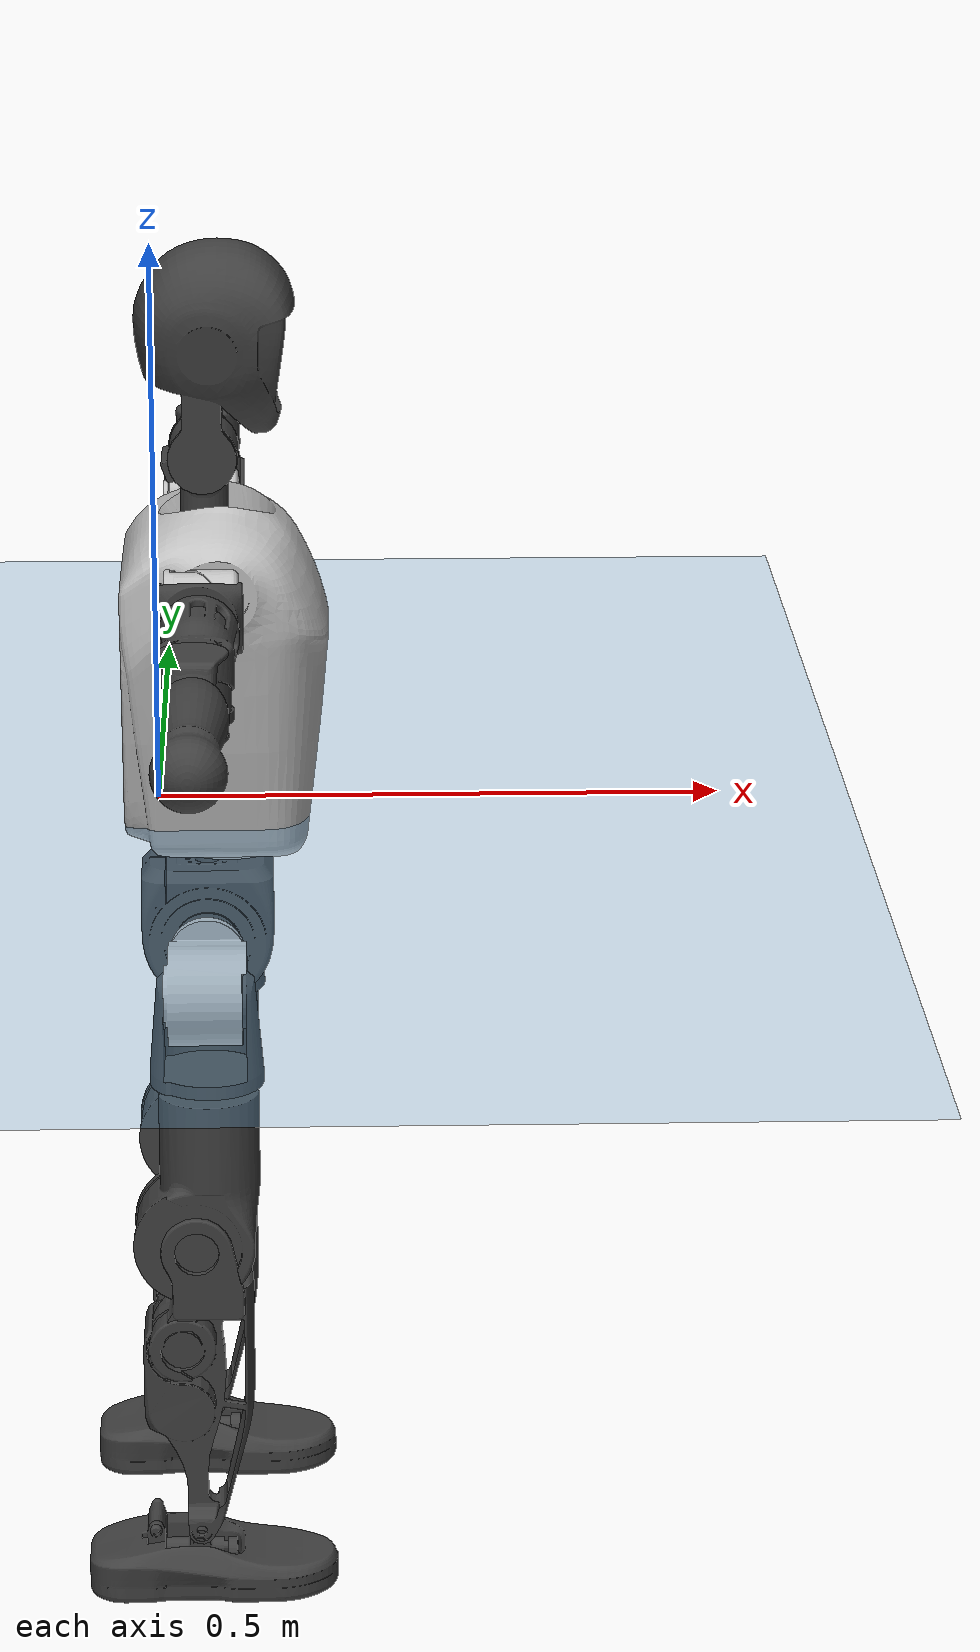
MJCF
<mujoco model="T1">
  <compiler angle="radian" assetdir="assets" balanceinertia="true" inertiafromgeom="false"/>

  <option timestep="0.005" density="1.2" viscosity="2e-05"/>

  <size nkey="1"/>

  <visual>
    <quality shadowsize="8192"/>
    <map shadowclip="0.5"/>
  </visual>

  <default>
    <default class="/">
      <joint armature="0.01" damping="0.01" frictionloss="0.1"/>
      <geom contype="0" conaffinity="0" group="1" solref="-1000 -80"/>
      <site size="0.01 0.005 0.005" group="5"/>
      <general forcelimited="true" biastype="affine" gainprm="25" biasprm="0 -25 -0.6"/>
      <default class="t1">
        <geom rgba="0.25 0.25 0.25 1"/>
        <default class="visual">
          <geom type="mesh" group="2"/>
        </default>
        <default class="collision">
          <geom group="3"/>
        </default>
        <default class="foot">
          <geom size="0.1115 0.05 0.015" type="box" condim="6" group="4" priority="1" solimp="0.015 1 0.015"/>
        </default>
        <default class="reward_collision_sphere">
          <geom group="5" rgba="1 0 0 1"/>
        </default>
      </default>
    </default>
  </default>

  <asset>
    <texture type="skybox" colorspace="auto" name="//unnamed_texture_0" builtin="gradient" rgb1="0.95 0.95 0.95" rgb2="0.95 0.95 0.95" width="100" height="600"/>
    <texture type="2d" colorspace="auto" name="texplane" builtin="checker" rgb1="0.345 0.575 0.748" rgb2="0.345 0.575 0.748" markrgb="1 1 1" width="512" height="512"/>
    <material name="MatPlane" class="/" texture="texplane" texuniform="true" texrepeat="2 2" specular="0.9"/>
    <mesh name="Trunk" class="/" file="Trunk.stl"/>
    <mesh name="H1" class="/" file="H1.stl"/>
    <mesh name="H2" class="/" file="H2.stl"/>
    <mesh name="AL1" class="/" file="AL1.stl"/>
    <mesh name="AL2" class="/" file="AL2.stl"/>
    <mesh name="AL3" class="/" file="AL3.stl"/>
    <mesh name="left_hand_link" class="/" file="left_hand_link.stl"/>
    <mesh name="AR1" class="/" file="AR1.stl"/>
    <mesh name="AR2" class="/" file="AR2.stl"/>
    <mesh name="AR3" class="/" file="AR3.stl"/>
    <mesh name="right_hand_link" class="/" file="right_hand_link.stl"/>
    <mesh name="Waist" class="/" file="Waist.stl"/>
    <mesh name="Hip_Pitch_Left" class="/" file="Hip_Pitch_Left.stl"/>
    <mesh name="Hip_Roll_Left" class="/" file="Hip_Roll_Left.stl"/>
    <mesh name="Hip_Yaw_Left" class="/" file="Hip_Yaw_Left.stl"/>
    <mesh name="Shank_Left" class="/" file="Shank_Left.stl"/>
    <mesh name="Ankle_Cross_Left" class="/" file="Ankle_Cross_Left.stl"/>
    <mesh name="left_foot_link" class="/" file="left_foot_link.stl"/>
    <mesh name="Hip_Pitch_Right" class="/" file="Hip_Pitch_Right.stl"/>
    <mesh name="Hip_Roll_Right" class="/" file="Hip_Roll_Right.stl"/>
    <mesh name="Hip_Yaw_Right" class="/" file="Hip_Yaw_Right.stl"/>
    <mesh name="Shank_Right" class="/" file="Shank_Right.stl"/>
    <mesh name="Ankle_Cross_Right" class="/" file="Ankle_Cross_Right.stl"/>
    <mesh name="right_foot_link" class="/" file="right_foot_link.stl"/>
  </asset>

  <worldbody>
    <geom name="floor" class="/" size="100 100 0.125" type="plane" group="0" material="MatPlane"/>
    <light name="toplight_shadow" class="/" pos="0 0 5" dir="0.0990148 0.0990148 -0.990148" type="directional" ambient="0.04 0.04 0.04" diffuse="0.55 0.55 0.55" specular="0.12 0.12 0.12"/>
    <light name="toplight_fill" class="/" pos="0 0 5" dir="0.0990148 0.0990148 -0.990148" type="directional" castshadow="false" ambient="0.04 0.04 0.04" diffuse="0.3 0.3 0.3" specular="0.08 0.08 0.08"/>
    <body name="trunk" childclass="t1" pos="9.2163e-05 -0.00116737 -0.000829376" quat="1 1.7112e-05 6.12854e-05 7.40735e-05">
      <inertial pos="0.043079 0.00163649 0.112182" quat="0.999957 -0.00238653 0.00117905 0.00885567" mass="12.4436" diaginertia="0.0209697 0.271675 0.0672844"/>
      <joint name="//unnamed_joint_0" type="free" armature="0" damping="0" frictionloss="0"/>
      <geom name="//unnamed_geom_1" class="visual" rgba="0.76 0.76 0.76 1" mesh="Trunk"/>
      <geom name="//unnamed_geom_2" class="collision" size="0.0772151 0.102953 0.15443" pos="0.0449458 0 0.12533" type="box"/>
      <geom name="//unnamed_geom_3" class="reward_collision_sphere" size="0.118396" pos="0.0449458 0 0.104442"/>
      <geom name="//unnamed_geom_4" class="reward_collision_sphere" size="0.015443" pos="0.0449458 0.110082 0"/>
      <geom name="//unnamed_geom_5" class="reward_collision_sphere" size="0.015443" pos="0.0449458 -0.110082 0"/>
      <geom name="//unnamed_geom_6" class="reward_collision_sphere" size="0.015443" pos="0.0449458 0.138574 0.187995"/>
      <geom name="//unnamed_geom_7" class="reward_collision_sphere" size="0.015443" pos="0.0449458 -0.138574 0.187995"/>
      <site name="imu" pos="-0.0123214 -0.0100244 0.000256606" size="0.0102953"/>
      <camera name="track" pos="0 -2.59018 0" quat="0.707107 0.707107 0 0" mode="trackcom"/>
      <camera name="ego_camera" pos="0.0913898 0 0.438655" quat="-0.5 -0.5 0.5 0.5"/>
      <body name="H1" pos="0.0446819 -0.00278943 0.256073" quat="1 9.63524e-05 -3.39008e-05 -3.98875e-05">
        <inertial pos="-0.0012582 -0.000226413 0.0607131" quat="0.76103 -0.00221552 0.00691285 0.648676" mass="0.470474" diaginertia="5.5952e-05 0.000794237 0.00018566"/>
        <joint name="AAHead_yaw" pos="0 0 0" axis="-0.000795843 0.00685965 0.999976" range="-1.57594 1.52284" armature="0.0107385" damping="0.0254768" frictionloss="0.0957028"/>
        <geom name="//unnamed_geom_8" class="visual" mesh="H1"/>
        <body name="H2" pos="-0.000962325 -0.00128069 0.0615691" quat="1 0.000153242 -2.95859e-05 5.053e-05">
          <inertial pos="0.00417962 -0.000836325 0.102241" quat="0.988579 0.097513 -0.0815306 -0.0809657" mass="0.683452" diaginertia="0.000480518 0.00696451 0.00220996"/>
          <joint name="Head_pitch" pos="0 0 0" axis="-0.0020774 -0.999998 0.000605568" stiffness="0.00116312" range="-1.21284 0.351857" armature="0.0100682" damping="0.00983405" frictionloss="0.0889068"/>
          <geom name="//unnamed_geom_9" class="visual" mesh="H2"/>
          <geom name="//unnamed_geom_10" class="collision" size="0.0823627" pos="0.00749097 0 0.114886"/>
          <geom name="//unnamed_geom_11" class="reward_collision_sphere" size="0.0926581" pos="0.0149819 0 0.104442"/>
        </body>
      </body>
      <body name="AL1" pos="0.041312 0.137368 0.226841" quat="0.999999 -0.00101296 0.00111064 0.000411574">
        <inertial pos="-0.000558549 0.0561044 -0.00190841" quat="0.50542 0.48644 -0.510227 0.49759" mass="0.581452" diaginertia="0.000327485 0.00486297 0.00036089"/>
        <joint name="Left_Shoulder_Pitch" pos="0 0 0" axis="-0.000484906 1 -0.000684533" stiffness="0.00261896" range="-3.31373 1.27468" armature="0.0101271" damping="0.00214419" frictionloss="0.103062"/>
        <geom name="//unnamed_geom_12" class="visual" rgba="0.76 0.76 0.76 1" mesh="AL1"/>
        <body name="AL2" pos="0.00027507 0.0640027 -0.00272483" quat="0.999999 -0.000820376 0.000515546 0.000845757">
          <inertial pos="0.00526696 0.050956 0.00225655" quat="0.491927 0.508264 -0.483531 0.515629" mass="0.17688" diaginertia="9.38141e-05 0.00124726 0.000223803"/>
          <joint name="Left_Shoulder_Roll" pos="0 0 0" axis="-0.999998 -0.0016758 -0.00130676" range="-1.57158 1.74193" armature="0.0102589" damping="0.00551224" frictionloss="0.10553"/>
          <geom name="//unnamed_geom_13" class="visual" mesh="AL2"/>
          <body name="AL3" pos="0.00090979 0.080083 0.00294799" quat="1 -3.27972e-06 5.5912e-06 -9.46215e-06">
            <inertial pos="-0.00232155 0.109859 -0.00275612" quat="0.714442 0.699653 0.00753042 -0.00062931" mass="1.1922" diaginertia="0.00313055 0.0478156 0.000801407"/>
            <joint name="Left_Elbow_Pitch" pos="0 0 0" axis="-0.000958721 -0.999956 -0.00933909" stiffness="0.00268838" range="-2.29033 2.31515" armature="0.0108411" damping="0.0238226" frictionloss="0.101538"/>
            <geom name="//unnamed_geom_14" class="visual" mesh="AL3"/>
            <geom name="//unnamed_geom_15" class="collision" size="0.030886 0.0772151" pos="0 0.0647544 0" quat="0.707105 0.707108 0 0" type="cylinder"/>
            <geom name="//unnamed_geom_16" class="reward_collision_sphere" size="0.0370632"/>
            <body name="left_hand_link" pos="0.00211361 0.193134 -0.00169674" quat="1 0.000107702 2.06828e-05 0.000439766">
              <inertial pos="-0.000781021 0.143095 -0.000339739" quat="0.708914 0.705293 0.000184741 -0.00126317" mass="0.352585" diaginertia="0.00185515 0.0295744 0.000270148"/>
              <joint name="Left_Elbow_Yaw" pos="0 0 0" axis="-0.000187926 -0.000175956 1" stiffness="0.00728297" range="-2.49015 0.0106076" armature="0.0103892" damping="0.00399954" frictionloss="0.11733"/>
              <geom name="//unnamed_geom_17" class="visual" mesh="left_hand_link"/>
              <geom name="//unnamed_geom_18" class="collision" size="0.030886 0.0900842" pos="0 0.168361 0" quat="0.707105 0.707108 0 0" type="cylinder"/>
              <geom name="//unnamed_geom_19" class="reward_collision_sphere" size="0.0514767"/>
              <geom name="//unnamed_geom_20" class="reward_collision_sphere" size="0.0360337" pos="0 0.14246 0"/>
              <geom name="//unnamed_geom_21" class="reward_collision_sphere" size="0.0360337" pos="0 0.278444 0"/>
            </body>
          </body>
        </body>
      </body>
      <body name="AR1" pos="0.0437803 -0.136946 0.22746" quat="0.999999 0.0010318 0.000939777 -0.000379989">
        <inertial pos="-0.00339117 -0.0582866 -0.00238253" quat="0.507744 0.498776 -0.494355 0.49903" mass="0.60856" diaginertia="0.000327579 0.00491889 0.000383309"/>
        <joint name="Right_Shoulder_Pitch" pos="0 0 0" axis="-0.00511077 -0.999986 0.000997437" stiffness="0.00121283" range="-1.22624 3.29912" armature="0.00985495" damping="0" frictionloss="0.0924303"/>
        <geom name="//unnamed_geom_22" class="visual" rgba="0.76 0.76 0.76 1" mesh="AR1"/>
        <body name="AR2" pos="-0.00121813 -0.0607086 0.00181892" quat="1 0.000264095 7.07186e-06 -5.97494e-05">
          <inertial pos="0.000309742 -0.0507295 -0.000455846" quat="0.504506 0.496688 -0.51089 0.487613" mass="0.174754" diaginertia="9.88484e-05 0.00125828 0.000229775"/>
          <joint name="Right_Shoulder_Roll" pos="0 0 0" axis="-0.999998 -0.000345318 0.00212717" stiffness="0.0013382" range="-1.74737 1.56328" armature="0.0101391" damping="0.000184642" frictionloss="0.103351"/>
          <geom name="//unnamed_geom_23" class="visual" mesh="AR2"/>
          <body name="AR3" pos="0.000785304 -0.0764511 -0.00172693" quat="0.999999 -0.0011366 -0.000730267 0.000425373">
            <inertial pos="0.000297543 -0.10954 0.000253332" quat="0.707853 0.70623 0.0130129 -0.0038642" mass="1.14521" diaginertia="0.00313024 0.0469824 0.000786766"/>
            <joint name="Right_Elbow_Pitch" pos="0 0 0" axis="0.00144376 0.999986 0.00505805" stiffness="0.00120667" range="-2.24991 2.27917" armature="0.010411" damping="0.00957634" frictionloss="0.0996552"/>
            <geom name="//unnamed_geom_24" class="visual" mesh="AR3"/>
            <geom name="//unnamed_geom_25" class="collision" size="0.030886 0.0772151" pos="0 -0.0647544 0" quat="0.707105 0.707108 0 0" type="cylinder"/>
            <geom name="//unnamed_geom_26" class="reward_collision_sphere" size="0.0370632"/>
            <body name="right_hand_link" pos="-0.00176608 -0.18803 0.00154188" quat="0.999999 -0.000796975 0.000974687 -0.000635773">
              <inertial pos="-3.43374e-05 -0.139094 0.00195532" quat="0.70764 0.706572 0.000918235 0.000716466" mass="0.366303" diaginertia="0.00197025 0.0303674 0.00026834"/>
              <joint name="Right_Elbow_Yaw" pos="0 0 0" axis="-0.00297687 -0.000746421 0.999995" range="0.0505822 2.43124" armature="0.0108158" damping="0.00612193" frictionloss="0.114308"/>
              <geom name="//unnamed_geom_27" class="visual" mesh="right_hand_link"/>
              <geom name="//unnamed_geom_28" class="collision" size="0.030886 0.0900842" pos="0 -0.168361 0" quat="0.707105 0.707108 0 0" type="cylinder"/>
              <geom name="//unnamed_geom_29" class="reward_collision_sphere" size="0.0514767"/>
              <geom name="//unnamed_geom_30" class="reward_collision_sphere" size="0.0360337" pos="0 -0.14246 0"/>
              <geom name="//unnamed_geom_31" class="reward_collision_sphere" size="0.0360337" pos="0 -0.278444 0"/>
            </body>
          </body>
        </body>
      </body>
      <body name="Waist" pos="0.0428716 -0.000539629 -0.121451" quat="1 -0.000547932 -0.000343413 0.000332502">
        <inertial pos="0.000295593 -0.000792041 0.00696093" quat="0.984191 0.00380408 -0.176993 0.00527164" mass="2.63279" diaginertia="0.00120002 0.0188134 0.00578503"/>
        <joint name="Waist" pos="0 0 0" axis="-0.00316352 -0.00459152 0.999984" range="-1.61818 1.58044" armature="0.011611" damping="0.0215586" frictionloss="0.101802"/>
        <geom name="//unnamed_geom_32" class="visual" mesh="Waist"/>
        <body name="Hip_Pitch_Left" pos="-0.000321573 0.138643 -0.00126842" quat="1 -1.6137e-05 1.63863e-06 -4.27646e-06">
          <inertial pos="0.000927134 -0.00686461 -0.016285" quat="0.976648 0.214468 0.00815052 0.00977077" mass="1.15221" diaginertia="0.000427396 0.00553754 0.00157469"/>
          <joint name="Left_Hip_Pitch" pos="0 0 0" axis="-3.68839e-05 0.999995 -0.00322557" stiffness="0.00641714" range="-1.79513 1.61672" armature="0.01136" damping="0.0218378" frictionloss="0.108482"/>
          <geom name="//unnamed_geom_33" class="visual" rgba="0.76 0.76 0.76 1" mesh="Hip_Pitch_Left"/>
          <body name="Hip_Roll_Left" pos="0.00192508 -0.00284467 -0.0230181" quat="1 -0.00032491 0.00029485 -1.6691e-05">
            <inertial pos="-0.00133472 0.000404463 -0.0540276" quat="0.704801 -0.000582231 -0.0136247 0.709274" mass="0.414783" diaginertia="0.000402192 0.00576039 0.000648485"/>
            <joint name="Left_Hip_Roll" pos="0 0 0" axis="-0.999931 0.0115415 -0.00199875" stiffness="0.0100382" range="-1.57009 0.192791" armature="0.011444" damping="0.00733905" frictionloss="0.0902874"/>
            <geom name="//unnamed_geom_34" class="visual" mesh="Hip_Roll_Left"/>
            <geom name="//unnamed_geom_35" class="reward_collision_sphere" size="0.0566244"/>
            <body name="Hip_Yaw_Left" pos="-0.00288609 -0.000471636 -0.0843008" quat="1 -0.0001857 -0.000379928 0.000114881">
              <inertial pos="-0.00790962 0.000389593 -0.0926896" quat="0.695831 -0.0371618 -0.0356548 0.716356" mass="2.34695" diaginertia="0.00612424 0.089458 0.00324799"/>
              <joint name="Left_Hip_Yaw" pos="0 0 0" axis="-0.00643127 0.00050115 -0.999979" stiffness="0.000104213" range="-1.0587 1.05488" armature="0.0105082" damping="0" frictionloss="0.100994"/>
              <geom name="//unnamed_geom_36" class="visual" mesh="Hip_Yaw_Left"/>
              <geom name="//unnamed_geom_37" class="collision" size="0.0514767 0.0823627" type="cylinder"/>
              <body name="Shank_Left" pos="-0.00863995 -0.000656226 -0.139319" quat="1 -0.000126734 0.000383577 -0.000296888">
                <inertial pos="-0.00404575 0.00308425 -0.12738" quat="0.997573 0.000520822 -0.0242173 0.0652716" mass="1.85793" diaginertia="0.008203 0.127822 0.00231369"/>
                <joint name="Left_Knee_Pitch" pos="0 0 0" axis="3.38532e-05 1 0.000784437" stiffness="0.00505709" range="0.0396477 2.3016" armature="0.0103659" damping="0.0159769" frictionloss="0.104463"/>
                <geom name="//unnamed_geom_38" class="visual" mesh="Shank_Left"/>
                <geom name="//unnamed_geom_39" class="collision" size="0.0514767 0.0772151" pos="0 0 -0.12533" type="cylinder"/>
                <geom name="//unnamed_geom_40" class="reward_collision_sphere" size="0.0669197"/>
                <body name="Ankle_Cross_Left" pos="0.000349817 -0.00120936 -0.289887" quat="1 -0.000445577 -0.000118119 0.000121008">
                  <inertial pos="-0.00438117 0.0029475 -0.00596955" quat="0.451955 0.540881 0.555132 0.441602" mass="0.0835497" diaginertia="7.16552e-06 9.15272e-05 1.42985e-05"/>
                  <joint name="Left_Ankle_Pitch" pos="0 0 0" axis="-0.000517245 0.999998 0.00191365" range="-0.823003 0.335667" armature="0.00926085" damping="0.00555466" frictionloss="0.105602"/>
                  <geom name="//unnamed_geom_41" class="visual" mesh="Ankle_Cross_Left"/>
                  <body name="left_foot_link" pos="-0.00108282 -0.0026774 -0.0106557" quat="1 -9.82927e-05 3.89228e-05 -0.000891295">
                    <inertial pos="-0.00308468 0.000284738 -0.0122411" quat="0.000393115 0.620316 -0.00274002 0.784347" mass="0.716094" diaginertia="0.000596629 0.00866678 0.00267846"/>
                    <joint name="Left_Ankle_Roll" pos="0 0 0" axis="-0.999995 -0.000142143 0.00326532" stiffness="0.000448921" range="-0.449565 0.439047" armature="0.0101637" damping="0.00719137" frictionloss="0.103741"/>
                    <geom name="//unnamed_geom_42" class="visual" mesh="left_foot_link"/>
                    <geom name="left_foot" class="foot" size="0.108798 0.0474516 0.0146381" pos="0.00749097 0 -0.0156663"/>
                    <geom name="//unnamed_geom_44" class="reward_collision_sphere" size="0.0535358" pos="0.00749097 0 -0.0156663"/>
                    <geom name="//unnamed_geom_45" class="reward_collision_sphere" size="0.030886" pos="0.0711642 -0.029787 -0.0156663"/>
                    <geom name="//unnamed_geom_46" class="reward_collision_sphere" size="0.030886" pos="-0.0524368 -0.029787 -0.0156663"/>
                    <site name="left_foot" class="foot" pos="0.00749097 0 -0.0156663" size="0.0102953"/>
                  </body>
                </body>
              </body>
            </body>
          </body>
        </body>
        <body name="Hip_Pitch_Right" pos="-7.48341e-05 -0.136878 0.00158108" quat="0.999999 0.000831934 0.000556058 -0.000385165">
          <inertial pos="-0.00251823 0.0090871 -0.0160736" quat="0.97387 -0.226611 0.0143418 -0.00427206" mass="1.1554" diaginertia="0.000440602 0.00550543 0.0015777"/>
          <joint name="Right_Hip_Pitch" pos="0 0 0" axis="0.00245767 -0.999997 -0.00044306" range="-1.57226 1.7635" armature="0.00888776" damping="0.0096108" frictionloss="0.102985"/>
          <geom name="//unnamed_geom_47" class="visual" rgba="0.76 0.76 0.76 1" mesh="Hip_Pitch_Right"/>
          <body name="Hip_Roll_Right" pos="0.00146563 -5.19455e-05 -0.0234139" quat="0.999999 0.000847223 -0.000934043 0.000199136">
            <inertial pos="0.00125611 0.000920726 -0.0532774" quat="0.701229 -0.00448256 -0.0112025 0.712834" mass="0.409675" diaginertia="0.000411852 0.00565034 0.000632414"/>
            <joint name="Right_Hip_Roll" pos="0 0 0" axis="-1 8.98631e-05 6.36874e-05" range="-0.170924 1.5714" armature="0.0101898" damping="0.0133095" frictionloss="0.114701"/>
            <geom name="//unnamed_geom_48" class="visual" mesh="Hip_Roll_Right"/>
            <geom name="//unnamed_geom_49" class="reward_collision_sphere" size="0.0566244"/>
            <body name="Hip_Yaw_Right" pos="-0.00136526 -0.000301028 -0.0860418" quat="1 -3.56273e-05 0.000301251 -0.00057717">
              <inertial pos="-0.00454749 -0.00257277 -0.0954303" quat="0.716304 -0.0335487 -0.0362051 0.696041" mass="2.35922" diaginertia="0.00605818 0.0954233 0.00312762"/>
              <joint name="Right_Hip_Yaw" pos="0 0 0" axis="-0.00815247 0.000165367 -0.999967" range="-1.02136 1.00306" armature="0.0116609" damping="0.00482047" frictionloss="0.102374"/>
              <geom name="//unnamed_geom_50" class="visual" mesh="Hip_Yaw_Right"/>
              <geom name="//unnamed_geom_51" class="collision" size="0.0514767 0.0823627" type="cylinder"/>
              <body name="Shank_Right" pos="-0.0121815 0.000463888 -0.138105" quat="0.999999 0.00114781 -0.000471998 0.000192881">
                <inertial pos="-0.00423686 7.0732e-06 -0.130967" quat="0.999135 -0.00497404 -0.0250533 -0.0328102" mass="1.98495" diaginertia="0.0084376 0.125874 0.0025011"/>
                <joint name="Right_Knee_Pitch" pos="0 0 0" axis="-0.00635816 -0.99994 -0.00889714" stiffness="0.00812203" range="-2.29329 0.0174099" armature="0.011273" damping="0.0187239" frictionloss="0.104099"/>
                <geom name="//unnamed_geom_52" class="visual" mesh="Shank_Right"/>
                <geom name="//unnamed_geom_53" class="collision" size="0.0514767 0.0772151" pos="0 0 -0.12533" type="cylinder"/>
                <geom name="//unnamed_geom_54" class="reward_collision_sphere" size="0.0669197"/>
                <body name="Ankle_Cross_Right" pos="-0.0019448 -0.000280261 -0.292204" quat="1 5.11108e-05 -6.08694e-05 4.23501e-06">
                  <inertial pos="-0.00333155 -0.00240471 -0.00837541" quat="0.443884 0.553716 0.55181 0.438031" mass="0.0827128" diaginertia="7.08406e-06 9.71531e-05 1.47501e-05"/>
                  <joint name="Right_Ankle_Pitch" pos="0 0 0" axis="-0.0102918 -0.999946 -0.00129347" range="-0.403748 0.81711" armature="0.0102567" damping="0.00531899" frictionloss="0.104856"/>
                  <geom name="//unnamed_geom_55" class="visual" mesh="Ankle_Cross_Right"/>
                  <body name="right_foot_link" pos="0.00223851 -0.00108129 -0.0148515" quat="1 8.85936e-05 -7.92628e-05 -0.000106405">
                    <inertial pos="-0.00197783 9.67957e-05 -0.00982629" quat="-1.15974e-05 0.619981 -0.000575196 0.784616" mass="0.743801" diaginertia="0.000634302 0.00836663 0.00268298"/>
                    <joint name="Right_Ankle_Roll" pos="0 0 0" axis="-0.999929 0.0117512 -0.00182583" range="-0.48114 0.436664" armature="0.00966351" damping="0" frictionloss="0.0978326"/>
                    <geom name="//unnamed_geom_56" class="visual" mesh="right_foot_link"/>
                    <geom name="right_foot" class="foot" size="0.108782 0.0447541 0.0145797" pos="0.00749097 0 -0.0156663"/>
                    <geom name="//unnamed_geom_58" class="reward_collision_sphere" size="0.0411814"/>
                    <geom name="//unnamed_geom_59" class="reward_collision_sphere" size="0.030886" pos="0.00749097 0 -0.0156663"/>
                    <geom name="//unnamed_geom_60" class="reward_collision_sphere" size="0.030886" pos="0.0711642 0.029787 -0.0156663"/>
                    <geom name="//unnamed_geom_61" class="reward_collision_sphere" size="0.030886" pos="-0.0524368 0.029787 -0.0156663"/>
                    <site name="right_foot" class="foot" pos="0.00749097 0 -0.0156663" size="0.0102953"/>
                  </body>
                </body>
              </body>
            </body>
          </body>
        </body>
      </body>
    </body>
  </worldbody>

  <contact>
    <pair class="/" geom1="floor" geom2="left_foot" name="//unnamed_contact_0"/>
    <pair class="/" geom1="floor" geom2="right_foot" name="//unnamed_contact_1"/>
  </contact>

  <actuator>
    <general name="AAHead_yaw" class="/" joint="AAHead_yaw" forcerange="-7.30023 7.30023" gainprm="23.7636" biasprm="0 -23.7636 -0.612524"/>
    <general name="Head_pitch" class="/" joint="Head_pitch" forcerange="-7.25157 7.25157" gainprm="23.7636" biasprm="0 -23.7636 -0.612524"/>
    <general name="Left_Shoulder_Pitch" class="/" joint="Left_Shoulder_Pitch" forcerange="-16.6143 16.6143" gainprm="23.7636" biasprm="0 -23.7636 -0.612524"/>
    <general name="Left_Shoulder_Roll" class="/" joint="Left_Shoulder_Roll" forcerange="-17.9272 17.9272" gainprm="23.7636" biasprm="0 -23.7636 -0.612524"/>
    <general name="Left_Elbow_Pitch" class="/" joint="Left_Elbow_Pitch" forcerange="-18.3034 18.3034" gainprm="23.7636" biasprm="0 -23.7636 -0.612524"/>
    <general name="Left_Elbow_Yaw" class="/" joint="Left_Elbow_Yaw" forcerange="-18.1866 18.1866" gainprm="23.7636" biasprm="0 -23.7636 -0.612524"/>
    <general name="Right_Shoulder_Pitch" class="/" joint="Right_Shoulder_Pitch" forcerange="-19.3335 19.3335" gainprm="23.7636" biasprm="0 -23.7636 -0.612524"/>
    <general name="Right_Shoulder_Roll" class="/" joint="Right_Shoulder_Roll" forcerange="-16.8706 16.8706" gainprm="23.7636" biasprm="0 -23.7636 -0.612524"/>
    <general name="Right_Elbow_Pitch" class="/" joint="Right_Elbow_Pitch" forcerange="-20.1174 20.1174" gainprm="23.7636" biasprm="0 -23.7636 -0.612524"/>
    <general name="Right_Elbow_Yaw" class="/" joint="Right_Elbow_Yaw" forcerange="-19.0661 19.0661" gainprm="23.7636" biasprm="0 -23.7636 -0.612524"/>
    <general name="Waist" class="/" joint="Waist" forcerange="-32.693 32.693" gainprm="23.7636" biasprm="0 -23.7636 -0.612524"/>
    <general name="Left_Hip_Pitch" class="/" joint="Left_Hip_Pitch" forcerange="-46.3491 46.3491" gainprm="23.7636" biasprm="0 -23.7636 -0.612524"/>
    <general name="Left_Hip_Roll" class="/" joint="Left_Hip_Roll" forcerange="-34.1453 34.1453" gainprm="23.7636" biasprm="0 -23.7636 -0.612524"/>
    <general name="Left_Hip_Yaw" class="/" joint="Left_Hip_Yaw" forcerange="-27.7129 27.7129" gainprm="23.7636" biasprm="0 -23.7636 -0.612524"/>
    <general name="Left_Knee_Pitch" class="/" joint="Left_Knee_Pitch" forcerange="-58.9596 58.9596" gainprm="23.7636" biasprm="0 -23.7636 -0.612524"/>
    <general name="Left_Ankle_Pitch" class="/" joint="Left_Ankle_Pitch" forcerange="-20.1502 20.1502" gainprm="23.7636" biasprm="0 -23.7636 -0.612524"/>
    <general name="Left_Ankle_Roll" class="/" joint="Left_Ankle_Roll" forcerange="-16.9561 16.9561" gainprm="23.7636" biasprm="0 -23.7636 -0.612524"/>
    <general name="Right_Hip_Pitch" class="/" joint="Right_Hip_Pitch" forcerange="-46.4543 46.4543" gainprm="23.7636" biasprm="0 -23.7636 -0.612524"/>
    <general name="Right_Hip_Roll" class="/" joint="Right_Hip_Roll" forcerange="-31.4047 31.4047" gainprm="23.7636" biasprm="0 -23.7636 -0.612524"/>
    <general name="Right_Hip_Yaw" class="/" joint="Right_Hip_Yaw" forcerange="-33.3361 33.3361" gainprm="23.7636" biasprm="0 -23.7636 -0.612524"/>
    <general name="Right_Knee_Pitch" class="/" joint="Right_Knee_Pitch" forcerange="-61.7959 61.7959" gainprm="23.7636" biasprm="0 -23.7636 -0.612524"/>
    <general name="Right_Ankle_Pitch" class="/" joint="Right_Ankle_Pitch" forcerange="-21.0946 21.0946" gainprm="23.7636" biasprm="0 -23.7636 -0.612524"/>
    <general name="Right_Ankle_Roll" class="/" joint="Right_Ankle_Roll" forcerange="-13.9713 13.9713" gainprm="23.7636" biasprm="0 -23.7636 -0.612524"/>
  </actuator>

  <sensor>
    <gyro site="imu" name="imu_angular_velocity"/>
    <velocimeter site="imu" name="imu_linear_velocity"/>
    <framelinvel objtype="site" objname="left_foot" name="left_foot_global_linear_velocity"/>
    <framelinvel objtype="site" objname="right_foot" name="right_foot_global_linear_velocity"/>
  </sensor>

  <keyframe>
    <key name="home" qpos="0 0 0.6385 1 0 0 0 0 0 0 1.4 0 -0.4 0 -1.4 0 0.4 0 -0.4 0 0 0.8 -0.4 0 0.4 0 0 -0.8 0.4 0"/>
  </keyframe>
</mujoco>
